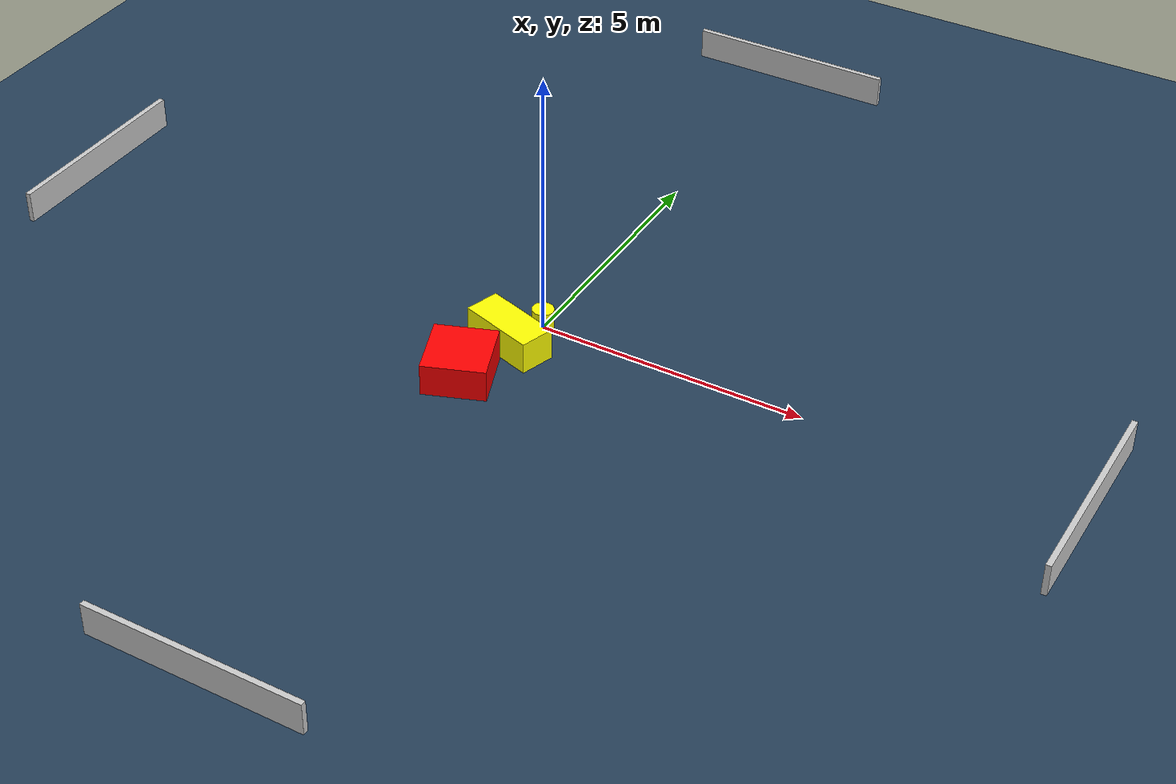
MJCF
<?xml version="1.0" ?>
<mujoco model="generated_environment">
  <option timestep="0.01" integrator="RK4" cone="elliptic"/>
  <default>
    <geom density="1"/>
  </default>
  <asset>
    <texture builtin="gradient" height="3072" name="skybox" rgb1="0.3 0.5 0.7" rgb2="0 0 0" type="skybox" width="512"/>
    <texture builtin="checker" height="300" name="groundplane" rgb1="0.2 0.3 0.4" rgb2="0.1 0.2 0.3" type="2d" width="300"/>
    <material name="groundplane" reflectance="0.2" texrepeat="5 5" texture="groundplane"/>
  </asset>
  <worldbody>
    <light dir="0 0 -1" directional="true" pos="0 0 1.5"/>
    <geom condim="3" friction="0.5 0.005 0.001" material="groundplane" name="floor" pos="0 0 0" size="0 0 0.05" type="plane"/>
    <body name="walls">
      <geom name="wall_1" condim="4" pos="-10.0 0.0 0.3" rgba="0.800000011920929 0.800000011920929 0.800000011920929 1.0" size="0.05 2.0 0.3" type="box"/>
      <geom name="wall_2" condim="4" pos="10.0 0.0 0.3" rgba="0.800000011920929 0.800000011920929 0.800000011920929 1.0" size="0.05 2.0 0.3" type="box"/>
      <geom name="wall_3" condim="4" pos="0.0 -10.0 0.3" rgba="0.800000011920929 0.800000011920929 0.800000011920929 1.0" size="2.0 0.05 0.3" type="box"/>
      <geom name="wall_4" condim="4" pos="0.0 10.0 0.3" rgba="0.800000011920929 0.800000011920929 0.800000011920929 1.0" size="2.0 0.05 0.3" type="box"/>
    </body>
    <body name="robot">
      <joint name="joint_x" type="slide" pos="0 0 0" axis="1 0 0"/>
      <joint name="joint_y" type="slide" pos="0 0 0" axis="0 1 0"/>
      <geom name="robot" type="cylinder" pos="0.0 0.0 0.2" size="0.2 0.2 0.0" mass="5.0" friction="1.0 0.005 0.0001" condim="4" rgba="1.0 1.0 0.0 1.0"/>
    </body>
    <body name="obstacle_1_movable">
      <geom name="obstacle_1_movable" condim="4" pos="-0.21671177036461925 -0.7830661779473445 0.3" euler="0 0 252.59566807487224" friction="0.0 0.005 0.001" rgba="1.0 1.0 0.0 1.0" size="0.32700956254125807 0.725955856194592 0.3" type="box" mass="0.1"/>
      <joint type="free"/>
    </body>
    <body name="obstacle_2_static">
      <geom name="obstacle_2_static" condim="4" pos="-0.5080476945405097 -1.9287454401963844 0.3" euler="0 0 20.667642032295312" friction="0.0 0.005 0.001" rgba="1.0 0.0 0.0 1.0" size="0.574208703830079 0.6032895751160371 0.3" type="box"/>
    </body>
  </worldbody>
  <actuator>
    <motor name="actuator_x" joint="joint_x" gear="1" ctrlrange="-1 1"/>
    <motor name="actuator_y" joint="joint_y" gear="1" ctrlrange="-1 1"/>
  </actuator>
</mujoco>
